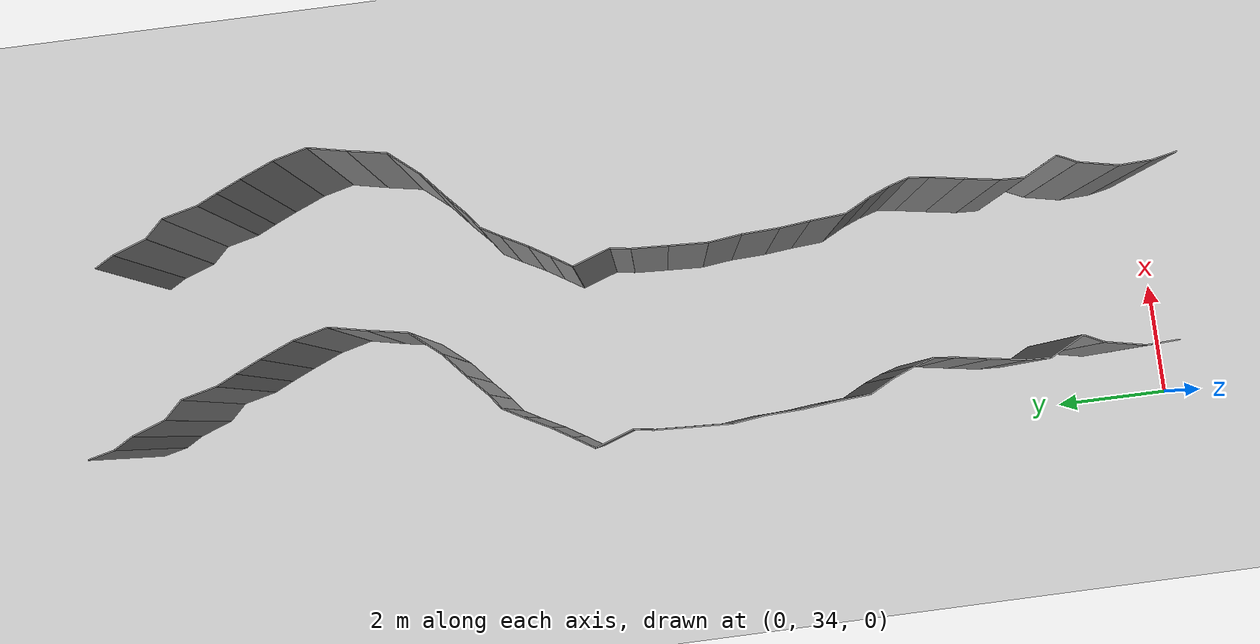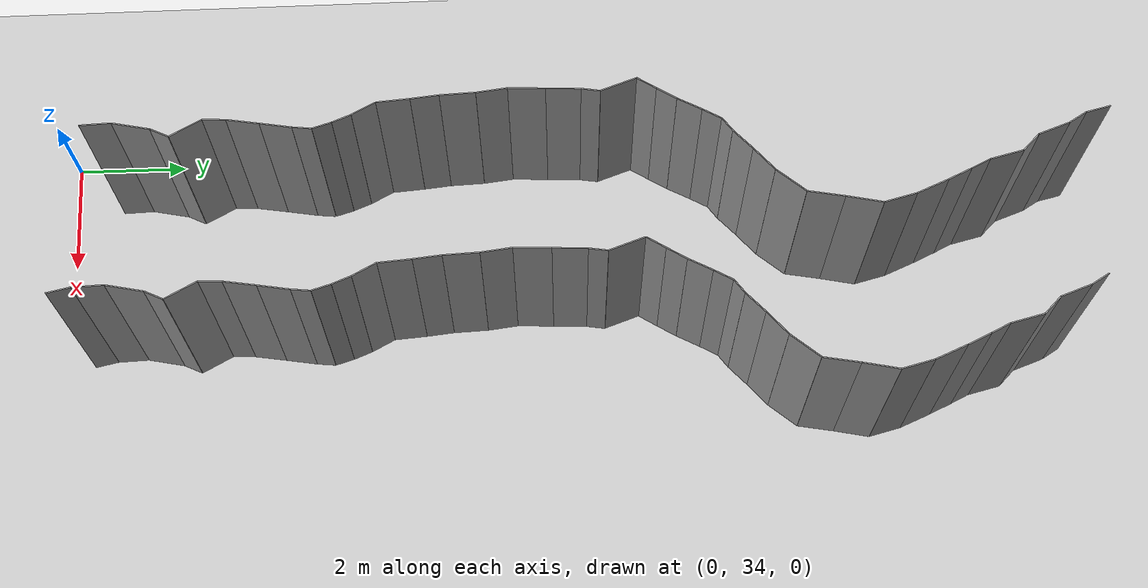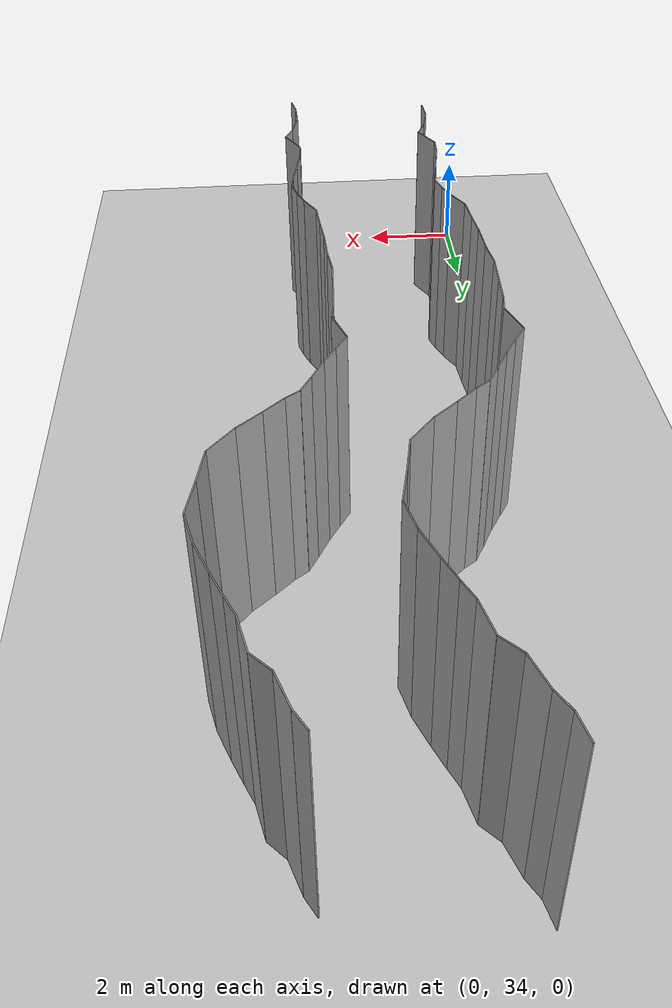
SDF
<sdf version="1.6">
 <world name="default">
  <model name="ground_plane">
   <static>1</static>
   <link name="link">
    <collision name="collision">
     <geometry><plane><normal>0 0 1</normal><size>200 200</size></plane></geometry>
     <surface><friction><ode><mu>100</mu><mu2>50</mu2></ode></friction></surface>
    </collision>
    <visual name="visual">
     <cast_shadows>0</cast_shadows>
     <geometry><plane><normal>0 0 1</normal><size>200 200</size></plane></geometry>
     <material>
      <script><uri>file://media/materials/scripts/gazebo.material</uri><name>Gazebo/Grey</name></script>
     </material>
    </visual>
   </link>
   <pose>0 100 0 0 -0 0</pose>
  </model>
  <model name="wall_149">
   <static>1</static>
   <pose>3.9239204196627675 34.65008082705074 2 0 0 0.20445626135803957</pose>
   <link name="link">
    <collision name="collision"><geometry><box><size>0.02 0.43027876864 4</size></box></geometry></collision>
    <visual name="visual">
     <material>
      <script><name>Gazebo/Grey</name><uri>file://media/materials/scripts/gazebo.material</uri></script>
     </material>
     <geometry><box><size>0.02 0.43027876864 4</size></box></geometry>
    </visual>
   </link>
  </model>
  <model name="wall_150">
   <static>1</static>
   <pose>0.8704913366165888 35.142128719754304 2 0 0 0.03462960774158834</pose>
   <link name="link">
    <collision name="collision"><geometry><box><size>0.02 0.563116680193 4</size></box></geometry></collision>
    <visual name="visual">
     <material>
      <script><name>Gazebo/Grey</name><uri>file://media/materials/scripts/gazebo.material</uri></script>
     </material>
     <geometry><box><size>0.02 0.563116680193 4</size></box></geometry>
    </visual>
   </link>
  </model>
  <model name="wall_151">
   <static>1</static>
   <pose>3.8704913366165887 35.142128719754304 2 0 0 0.03462960774158834</pose>
   <link name="link">
    <collision name="collision"><geometry><box><size>0.02 0.563116680193 4</size></box></geometry></collision>
    <visual name="visual">
     <material>
      <script><name>Gazebo/Grey</name><uri>file://media/materials/scripts/gazebo.material</uri></script>
     </material>
     <geometry><box><size>0.02 0.563116680193 4</size></box></geometry>
    </visual>
   </link>
  </model>
  <model name="wall_152">
   <static>1</static>
   <pose>0.9309304983596671 35.759803084062504 2 0 0 -0.20576052317169233</pose>
   <link name="link">
    <collision name="collision"><geometry><box><size>0.02 0.687062641342 4</size></box></geometry></collision>
    <visual name="visual">
     <material>
      <script><name>Gazebo/Grey</name><uri>file://media/materials/scripts/gazebo.material</uri></script>
     </material>
     <geometry><box><size>0.02 0.687062641342 4</size></box></geometry>
    </visual>
   </link>
  </model>
  <model name="wall_153">
   <static>1</static>
   <pose>3.9309304983596673 35.759803084062504 2 0 0 -0.20576052317169233</pose>
   <link name="link">
    <collision name="collision"><geometry><box><size>0.02 0.687062641342 4</size></box></geometry></collision>
    <visual name="visual">
     <material>
      <script><name>Gazebo/Grey</name><uri>file://media/materials/scripts/gazebo.material</uri></script>
     </material>
     <geometry><box><size>0.02 0.687062641342 4</size></box></geometry>
    </visual>
   </link>
  </model>
  <model name="wall_154">
   <static>1</static>
   <pose>1.0787655183014848 36.25987318850832 2 0 0 -0.44269857589574896</pose>
   <link name="link">
    <collision name="collision"><geometry><box><size>0.02 0.362517630442 4</size></box></geometry></collision>
    <visual name="visual">
     <material>
      <script><name>Gazebo/Grey</name><uri>file://media/materials/scripts/gazebo.material</uri></script>
     </material>
     <geometry><box><size>0.02 0.362517630442 4</size></box></geometry>
    </visual>
   </link>
  </model>
  <model name="wall_155">
   <static>1</static>
   <pose>4.078765518301485 36.25987318850832 2 0 0 -0.44269857589574896</pose>
   <link name="link">
    <collision name="collision"><geometry><box><size>0.02 0.362517630442 4</size></box></geometry></collision>
    <visual name="visual">
     <material>
      <script><name>Gazebo/Grey</name><uri>file://media/materials/scripts/gazebo.material</uri></script>
     </material>
     <geometry><box><size>0.02 0.362517630442 4</size></box></geometry>
    </visual>
   </link>
  </model>
  <model name="wall_156">
   <static>1</static>
   <pose>1.006678137784895 36.70904799699519 2 0 0 0.4831871846608332</pose>
   <link name="link">
    <collision name="collision"><geometry><box><size>0.02 0.644570358523 4</size></box></geometry></collision>
    <visual name="visual">
     <material>
      <script><name>Gazebo/Grey</name><uri>file://media/materials/scripts/gazebo.material</uri></script>
     </material>
     <geometry><box><size>0.02 0.644570358523 4</size></box></geometry>
    </visual>
   </link>
  </model>
  <model name="wall_157">
   <static>1</static>
   <pose>4.0066781377848955 36.70904799699519 2 0 0 0.4831871846608332</pose>
   <link name="link">
    <collision name="collision"><geometry><box><size>0.02 0.644570358523 4</size></box></geometry></collision>
    <visual name="visual">
     <material>
      <script><name>Gazebo/Grey</name><uri>file://media/materials/scripts/gazebo.material</uri></script>
     </material>
     <geometry><box><size>0.02 0.644570358523 4</size></box></geometry>
    </visual>
   </link>
  </model>
  <model name="wall_158">
   <static>1</static>
   <pose>0.8663357798228689 37.20195509348812 2 0 0 -0.045230718924256286</pose>
   <link name="link">
    <collision name="collision"><geometry><box><size>0.02 0.415460028061 4</size></box></geometry></collision>
    <visual name="visual">
     <material>
      <script><name>Gazebo/Grey</name><uri>file://media/materials/scripts/gazebo.material</uri></script>
     </material>
     <geometry><box><size>0.02 0.415460028061 4</size></box></geometry>
    </visual>
   </link>
  </model>
  <model name="wall_159">
   <static>1</static>
   <pose>3.866335779822869 37.20195509348812 2 0 0 -0.045230718924256286</pose>
   <link name="link">
    <collision name="collision"><geometry><box><size>0.02 0.415460028061 4</size></box></geometry></collision>
    <visual name="visual">
     <material>
      <script><name>Gazebo/Grey</name><uri>file://media/materials/scripts/gazebo.material</uri></script>
     </material>
     <geometry><box><size>0.02 0.415460028061 4</size></box></geometry>
    </visual>
   </link>
  </model>
  <model name="wall_160">
   <static>1</static>
   <pose>0.9224930562602742 37.69992433524903 2 0 0 -0.15963679809024692</pose>
   <link name="link">
    <collision name="collision"><geometry><box><size>0.02 0.588384622478 4</size></box></geometry></collision>
    <visual name="visual">
     <material>
      <script><name>Gazebo/Grey</name><uri>file://media/materials/scripts/gazebo.material</uri></script>
     </material>
     <geometry><box><size>0.02 0.588384622478 4</size></box></geometry>
    </visual>
   </link>
  </model>
  <model name="wall_161">
   <static>1</static>
   <pose>3.922493056260274 37.69992433524903 2 0 0 -0.15963679809024692</pose>
   <link name="link">
    <collision name="collision"><geometry><box><size>0.02 0.588384622478 4</size></box></geometry></collision>
    <visual name="visual">
     <material>
      <script><name>Gazebo/Grey</name><uri>file://media/materials/scripts/gazebo.material</uri></script>
     </material>
     <geometry><box><size>0.02 0.588384622478 4</size></box></geometry>
    </visual>
   </link>
  </model>
  <model name="wall_162">
   <static>1</static>
   <pose>1.0173873821105948 38.27496158089008 2 0 0 -0.16753650364621095</pose>
   <link name="link">
    <collision name="collision"><geometry><box><size>0.02 0.577253513264 4</size></box></geometry></collision>
    <visual name="visual">
     <material>
      <script><name>Gazebo/Grey</name><uri>file://media/materials/scripts/gazebo.material</uri></script>
     </material>
     <geometry><box><size>0.02 0.577253513264 4</size></box></geometry>
    </visual>
   </link>
  </model>
  <model name="wall_163">
   <static>1</static>
   <pose>4.017387382110595 38.27496158089008 2 0 0 -0.16753650364621095</pose>
   <link name="link">
    <collision name="collision"><geometry><box><size>0.02 0.577253513264 4</size></box></geometry></collision>
    <visual name="visual">
     <material>
      <script><name>Gazebo/Grey</name><uri>file://media/materials/scripts/gazebo.material</uri></script>
     </material>
     <geometry><box><size>0.02 0.577253513264 4</size></box></geometry>
    </visual>
   </link>
  </model>
  <model name="wall_164">
   <static>1</static>
   <pose>1.0844622152562788 38.731563447598155 2 0 0 -0.10969402421771438</pose>
   <link name="link">
    <collision name="collision"><geometry><box><size>0.02 0.346112865536 4</size></box></geometry></collision>
    <visual name="visual">
     <material>
      <script><name>Gazebo/Grey</name><uri>file://media/materials/scripts/gazebo.material</uri></script>
     </material>
     <geometry><box><size>0.02 0.346112865536 4</size></box></geometry>
    </visual>
   </link>
  </model>
  <model name="wall_165">
   <static>1</static>
   <pose>4.084462215256279 38.731563447598155 2 0 0 -0.10969402421771438</pose>
   <link name="link">
    <collision name="collision"><geometry><box><size>0.02 0.346112865536 4</size></box></geometry></collision>
    <visual name="visual">
     <material>
      <script><name>Gazebo/Grey</name><uri>file://media/materials/scripts/gazebo.material</uri></script>
     </material>
     <geometry><box><size>0.02 0.346112865536 4</size></box></geometry>
    </visual>
   </link>
  </model>
  <model name="wall_166">
   <static>1</static>
   <pose>1.0528176380058856 39.07550781879453 2 0 0 0.2861729953578919</pose>
   <link name="link">
    <collision name="collision"><geometry><box><size>0.02 0.358433188497 4</size></box></geometry></collision>
    <visual name="visual">
     <material>
      <script><name>Gazebo/Grey</name><uri>file://media/materials/scripts/gazebo.material</uri></script>
     </material>
     <geometry><box><size>0.02 0.358433188497 4</size></box></geometry>
    </visual>
   </link>
  </model>
  <model name="wall_167">
   <static>1</static>
   <pose>4.052817638005886 39.07550781879453 2 0 0 0.2861729953578919</pose>
   <link name="link">
    <collision name="collision"><geometry><box><size>0.02 0.358433188497 4</size></box></geometry></collision>
    <visual name="visual">
     <material>
      <script><name>Gazebo/Grey</name><uri>file://media/materials/scripts/gazebo.material</uri></script>
     </material>
     <geometry><box><size>0.02 0.358433188497 4</size></box></geometry>
    </visual>
   </link>
  </model>
  <model name="wall_168">
   <static>1</static>
   <pose>0.9354883147767599 39.416214110200244 2 0 0 0.3765582932644857</pose>
   <link name="link">
    <collision name="collision"><geometry><box><size>0.02 0.362989001935 4</size></box></geometry></collision>
    <visual name="visual">
     <material>
      <script><name>Gazebo/Grey</name><uri>file://media/materials/scripts/gazebo.material</uri></script>
     </material>
     <geometry><box><size>0.02 0.362989001935 4</size></box></geometry>
    </visual>
   </link>
  </model>
  <model name="wall_169">
   <static>1</static>
   <pose>3.9354883147767596 39.416214110200244 2 0 0 0.3765582932644857</pose>
   <link name="link">
    <collision name="collision"><geometry><box><size>0.02 0.362989001935 4</size></box></geometry></collision>
    <visual name="visual">
     <material>
      <script><name>Gazebo/Grey</name><uri>file://media/materials/scripts/gazebo.material</uri></script>
     </material>
     <geometry><box><size>0.02 0.362989001935 4</size></box></geometry>
    </visual>
   </link>
  </model>
  <model name="wall_170">
   <static>1</static>
   <pose>0.757496980346532 39.79883595564514 2 0 0 0.47971478098344517</pose>
   <link name="link">
    <collision name="collision"><geometry><box><size>0.02 0.482103963508 4</size></box></geometry></collision>
    <visual name="visual">
     <material>
      <script><name>Gazebo/Grey</name><uri>file://media/materials/scripts/gazebo.material</uri></script>
     </material>
     <geometry><box><size>0.02 0.482103963508 4</size></box></geometry>
    </visual>
   </link>
  </model>
  <model name="wall_171">
   <static>1</static>
   <pose>3.757496980346532 39.79883595564514 2 0 0 0.47971478098344517</pose>
   <link name="link">
    <collision name="collision"><geometry><box><size>0.02 0.482103963508 4</size></box></geometry></collision>
    <visual name="visual">
     <material>
      <script><name>Gazebo/Grey</name><uri>file://media/materials/scripts/gazebo.material</uri></script>
     </material>
     <geometry><box><size>0.02 0.482103963508 4</size></box></geometry>
    </visual>
   </link>
  </model>
  <model name="wall_172">
   <static>1</static>
   <pose>0.6244893099963778 40.31323860465824 2 0 0 0.07225866777856937</pose>
   <link name="link">
    <collision name="collision"><geometry><box><size>0.02 0.60269078524 4</size></box></geometry></collision>
    <visual name="visual">
     <material>
      <script><name>Gazebo/Grey</name><uri>file://media/materials/scripts/gazebo.material</uri></script>
     </material>
     <geometry><box><size>0.02 0.60269078524 4</size></box></geometry>
    </visual>
   </link>
  </model>
  <model name="wall_173">
   <static>1</static>
   <pose>3.6244893099963775 40.31323860465824 2 0 0 0.07225866777856937</pose>
   <link name="link">
    <collision name="collision"><geometry><box><size>0.02 0.60269078524 4</size></box></geometry></collision>
    <visual name="visual">
     <material>
      <script><name>Gazebo/Grey</name><uri>file://media/materials/scripts/gazebo.material</uri></script>
     </material>
     <geometry><box><size>0.02 0.60269078524 4</size></box></geometry>
    </visual>
   </link>
  </model>
  <model name="wall_174">
   <static>1</static>
   <pose>0.5772567695850367 40.86838111164113 2 0 0 0.09973989840003131</pose>
   <link name="link">
    <collision name="collision"><geometry><box><size>0.02 0.511710112355 4</size></box></geometry></collision>
    <visual name="visual">
     <material>
      <script><name>Gazebo/Grey</name><uri>file://media/materials/scripts/gazebo.material</uri></script>
     </material>
     <geometry><box><size>0.02 0.511710112355 4</size></box></geometry>
    </visual>
   </link>
  </model>
  <model name="wall_175">
   <static>1</static>
   <pose>3.577256769585037 40.86838111164113 2 0 0 0.09973989840003131</pose>
   <link name="link">
    <collision name="collision"><geometry><box><size>0.02 0.511710112355 4</size></box></geometry></collision>
    <visual name="visual">
     <material>
      <script><name>Gazebo/Grey</name><uri>file://media/materials/scripts/gazebo.material</uri></script>
     </material>
     <geometry><box><size>0.02 0.511710112355 4</size></box></geometry>
    </visual>
   </link>
  </model>
  <model name="wall_176">
   <static>1</static>
   <pose>0.539848820118687 41.443198120527285 2 0 0 0.03724083981375796</pose>
   <link name="link">
    <collision name="collision"><geometry><box><size>0.02 0.64091143661 4</size></box></geometry></collision>
    <visual name="visual">
     <material>
      <script><name>Gazebo/Grey</name><uri>file://media/materials/scripts/gazebo.material</uri></script>
     </material>
     <geometry><box><size>0.02 0.64091143661 4</size></box></geometry>
    </visual>
   </link>
  </model>
  <model name="wall_177">
   <static>1</static>
   <pose>3.539848820118687 41.443198120527285 2 0 0 0.03724083981375796</pose>
   <link name="link">
    <collision name="collision"><geometry><box><size>0.02 0.64091143661 4</size></box></geometry></collision>
    <visual name="visual">
     <material>
      <script><name>Gazebo/Grey</name><uri>file://media/materials/scripts/gazebo.material</uri></script>
     </material>
     <geometry><box><size>0.02 0.64091143661 4</size></box></geometry>
    </visual>
   </link>
  </model>
  <model name="wall_178">
   <static>1</static>
   <pose>0.49600251614485014 42.04236264380286 2 0 0 0.11392363111444061</pose>
   <link name="link">
    <collision name="collision"><geometry><box><size>0.02 0.561501804962 4</size></box></geometry></collision>
    <visual name="visual">
     <material>
      <script><name>Gazebo/Grey</name><uri>file://media/materials/scripts/gazebo.material</uri></script>
     </material>
     <geometry><box><size>0.02 0.561501804962 4</size></box></geometry>
    </visual>
   </link>
  </model>
  <model name="wall_179">
   <static>1</static>
   <pose>3.4960025161448502 42.04236264380286 2 0 0 0.11392363111444061</pose>
   <link name="link">
    <collision name="collision"><geometry><box><size>0.02 0.561501804962 4</size></box></geometry></collision>
    <visual name="visual">
     <material>
      <script><name>Gazebo/Grey</name><uri>file://media/materials/scripts/gazebo.material</uri></script>
     </material>
     <geometry><box><size>0.02 0.561501804962 4</size></box></geometry>
    </visual>
   </link>
  </model>
  <model name="wall_180">
   <static>1</static>
   <pose>0.4798855004668867 42.654808596039615 2 0 0 -0.04733283038546878</pose>
   <link name="link">
    <collision name="collision"><geometry><box><size>0.02 0.667777816223 4</size></box></geometry></collision>
    <visual name="visual">
     <material>
      <script><name>Gazebo/Grey</name><uri>file://media/materials/scripts/gazebo.material</uri></script>
     </material>
     <geometry><box><size>0.02 0.667777816223 4</size></box></geometry>
    </visual>
   </link>
  </model>
  <model name="wall_181">
   <static>1</static>
   <pose>3.479885500466887 42.654808596039615 2 0 0 -0.04733283038546878</pose>
   <link name="link">
    <collision name="collision"><geometry><box><size>0.02 0.667777816223 4</size></box></geometry></collision>
    <visual name="visual">
     <material>
      <script><name>Gazebo/Grey</name><uri>file://media/materials/scripts/gazebo.material</uri></script>
     </material>
     <geometry><box><size>0.02 0.667777816223 4</size></box></geometry>
    </visual>
   </link>
  </model>
  <model name="wall_182">
   <static>1</static>
   <pose>0.5116992023763561 43.29828923566824 2 0 0 -0.051623345974134476</pose>
   <link name="link">
    <collision name="collision"><geometry><box><size>0.02 0.620758334482 4</size></box></geometry></collision>
    <visual name="visual">
     <material>
      <script><name>Gazebo/Grey</name><uri>file://media/materials/scripts/gazebo.material</uri></script>
     </material>
     <geometry><box><size>0.02 0.620758334482 4</size></box></geometry>
    </visual>
   </link>
  </model>
  <model name="wall_183">
   <static>1</static>
   <pose>3.5116992023763562 43.29828923566824 2 0 0 -0.051623345974134476</pose>
   <link name="link">
    <collision name="collision"><geometry><box><size>0.02 0.620758334482 4</size></box></geometry></collision>
    <visual name="visual">
     <material>
      <script><name>Gazebo/Grey</name><uri>file://media/materials/scripts/gazebo.material</uri></script>
     </material>
     <geometry><box><size>0.02 0.620758334482 4</size></box></geometry>
    </visual>
   </link>
  </model>
  <model name="wall_184">
   <static>1</static>
   <pose>0.5539174357366535 43.77749502705897 2 0 0 -0.15360504526523366</pose>
   <link name="link">
    <collision name="collision"><geometry><box><size>0.02 0.342512990177 4</size></box></geometry></collision>
    <visual name="visual">
     <material>
      <script><name>Gazebo/Grey</name><uri>file://media/materials/scripts/gazebo.material</uri></script>
     </material>
     <geometry><box><size>0.02 0.342512990177 4</size></box></geometry>
    </visual>
   </link>
  </model>
  <model name="wall_185">
   <static>1</static>
   <pose>3.5539174357366536 43.77749502705897 2 0 0 -0.15360504526523366</pose>
   <link name="link">
    <collision name="collision"><geometry><box><size>0.02 0.342512990177 4</size></box></geometry></collision>
    <visual name="visual">
     <material>
      <script><name>Gazebo/Grey</name><uri>file://media/materials/scripts/gazebo.material</uri></script>
     </material>
     <geometry><box><size>0.02 0.342512990177 4</size></box></geometry>
    </visual>
   </link>
  </model>
  <model name="wall_186">
   <static>1</static>
   <pose>0.46916573424835484 44.26973230173024 2 0 0 0.3308855293030495</pose>
   <link name="link">
    <collision name="collision"><geometry><box><size>0.02 0.683046156625 4</size></box></geometry></collision>
    <visual name="visual">
     <material>
      <script><name>Gazebo/Grey</name><uri>file://media/materials/scripts/gazebo.material</uri></script>
     </material>
     <geometry><box><size>0.02 0.683046156625 4</size></box></geometry>
    </visual>
   </link>
  </model>
  <model name="wall_187">
   <static>1</static>
   <pose>3.469165734248355 44.26973230173024 2 0 0 0.3308855293030495</pose>
   <link name="link">
    <collision name="collision"><geometry><box><size>0.02 0.683046156625 4</size></box></geometry></collision>
    <visual name="visual">
     <material>
      <script><name>Gazebo/Grey</name><uri>file://media/materials/scripts/gazebo.material</uri></script>
     </material>
     <geometry><box><size>0.02 0.683046156625 4</size></box></geometry>
    </visual>
   </link>
  </model>
  <model name="wall_188">
   <static>1</static>
   <pose>0.4645800463227797 44.76147034130841 2 0 0 -0.5624488898382787</pose>
   <link name="link">
    <collision name="collision"><geometry><box><size>0.02 0.398937342985 4</size></box></geometry></collision>
    <visual name="visual">
     <material>
      <script><name>Gazebo/Grey</name><uri>file://media/materials/scripts/gazebo.material</uri></script>
     </material>
     <geometry><box><size>0.02 0.398937342985 4</size></box></geometry>
    </visual>
   </link>
  </model>
  <model name="wall_189">
   <static>1</static>
   <pose>3.4645800463227796 44.76147034130841 2 0 0 -0.5624488898382787</pose>
   <link name="link">
    <collision name="collision"><geometry><box><size>0.02 0.398937342985 4</size></box></geometry></collision>
    <visual name="visual">
     <material>
      <script><name>Gazebo/Grey</name><uri>file://media/materials/scripts/gazebo.material</uri></script>
     </material>
     <geometry><box><size>0.02 0.398937342985 4</size></box></geometry>
    </visual>
   </link>
  </model>
  <model name="wall_190">
   <static>1</static>
   <pose>0.6776395704448512 45.10397498786715 2 0 0 -0.5506501345800691</pose>
   <link name="link">
    <collision name="collision"><geometry><box><size>0.02 0.407807860173 4</size></box></geometry></collision>
    <visual name="visual">
     <material>
      <script><name>Gazebo/Grey</name><uri>file://media/materials/scripts/gazebo.material</uri></script>
     </material>
     <geometry><box><size>0.02 0.407807860173 4</size></box></geometry>
    </visual>
   </link>
  </model>
  <model name="wall_191">
   <static>1</static>
   <pose>3.6776395704448515 45.10397498786715 2 0 0 -0.5506501345800691</pose>
   <link name="link">
    <collision name="collision"><geometry><box><size>0.02 0.407807860173 4</size></box></geometry></collision>
    <visual name="visual">
     <material>
      <script><name>Gazebo/Grey</name><uri>file://media/materials/scripts/gazebo.material</uri></script>
     </material>
     <geometry><box><size>0.02 0.407807860173 4</size></box></geometry>
    </visual>
   </link>
  </model>
  <model name="wall_192">
   <static>1</static>
   <pose>0.8967950665516643 45.490905214644364 2 0 0 -0.48547534107791</pose>
   <link name="link">
    <collision name="collision"><geometry><box><size>0.02 0.482029898406 4</size></box></geometry></collision>
    <visual name="visual">
     <material>
      <script><name>Gazebo/Grey</name><uri>file://media/materials/scripts/gazebo.material</uri></script>
     </material>
     <geometry><box><size>0.02 0.482029898406 4</size></box></geometry>
    </visual>
   </link>
  </model>
  <model name="wall_193">
   <static>1</static>
   <pose>3.896795066551664 45.490905214644364 2 0 0 -0.48547534107791</pose>
   <link name="link">
    <collision name="collision"><geometry><box><size>0.02 0.482029898406 4</size></box></geometry></collision>
    <visual name="visual">
     <material>
      <script><name>Gazebo/Grey</name><uri>file://media/materials/scripts/gazebo.material</uri></script>
     </material>
     <geometry><box><size>0.02 0.482029898406 4</size></box></geometry>
    </visual>
   </link>
  </model>
  <model name="wall_194">
   <static>1</static>
   <pose>1.102490493124489 45.869267710442976 2 0 0 -0.5138052431447958</pose>
   <link name="link">
    <collision name="collision"><geometry><box><size>0.02 0.379377035872 4</size></box></geometry></collision>
    <visual name="visual">
     <material>
      <script><name>Gazebo/Grey</name><uri>file://media/materials/scripts/gazebo.material</uri></script>
     </material>
     <geometry><box><size>0.02 0.379377035872 4</size></box></geometry>
    </visual>
   </link>
  </model>
  <model name="wall_195">
   <static>1</static>
   <pose>4.102490493124489 45.869267710442976 2 0 0 -0.5138052431447958</pose>
   <link name="link">
    <collision name="collision"><geometry><box><size>0.02 0.379377035872 4</size></box></geometry></collision>
    <visual name="visual">
     <material>
      <script><name>Gazebo/Grey</name><uri>file://media/materials/scripts/gazebo.material</uri></script>
     </material>
     <geometry><box><size>0.02 0.379377035872 4</size></box></geometry>
    </visual>
   </link>
  </model>
  <model name="wall_196">
   <static>1</static>
   <pose>1.3170822508846909 46.1229539157399 2 0 0 -0.9407738620319585</pose>
   <link name="link">
    <collision name="collision"><geometry><box><size>0.02 0.300392848914 4</size></box></geometry></collision>
    <visual name="visual">
     <material>
      <script><name>Gazebo/Grey</name><uri>file://media/materials/scripts/gazebo.material</uri></script>
     </material>
     <geometry><box><size>0.02 0.300392848914 4</size></box></geometry>
    </visual>
   </link>
  </model>
  <model name="wall_197">
   <static>1</static>
   <pose>4.317082250884691 46.1229539157399 2 0 0 -0.9407738620319585</pose>
   <link name="link">
    <collision name="collision"><geometry><box><size>0.02 0.300392848914 4</size></box></geometry></collision>
    <visual name="visual">
     <material>
      <script><name>Gazebo/Grey</name><uri>file://media/materials/scripts/gazebo.material</uri></script>
     </material>
     <geometry><box><size>0.02 0.300392848914 4</size></box></geometry>
    </visual>
   </link>
  </model>
  <model name="wall_198">
   <static>1</static>
   <pose>1.615046346363656 46.375535012743676 2 0 0 -0.8221075825544054</pose>
   <link name="link">
    <collision name="collision"><geometry><box><size>0.02 0.482139147676 4</size></box></geometry></collision>
    <visual name="visual">
     <material>
      <script><name>Gazebo/Grey</name><uri>file://media/materials/scripts/gazebo.material</uri></script>
     </material>
     <geometry><box><size>0.02 0.482139147676 4</size></box></geometry>
    </visual>
   </link>
  </model>
  <model name="wall_199">
   <static>1</static>
   <pose>4.6150463463636555 46.375535012743676 2 0 0 -0.8221075825544054</pose>
   <link name="link">
    <collision name="collision"><geometry><box><size>0.02 0.482139147676 4</size></box></geometry></collision>
    <visual name="visual">
     <material>
      <script><name>Gazebo/Grey</name><uri>file://media/materials/scripts/gazebo.material</uri></script>
     </material>
     <geometry><box><size>0.02 0.482139147676 4</size></box></geometry>
    </visual>
   </link>
  </model>
  <model name="wall_200">
   <static>1</static>
   <pose>1.9972519164830225 46.71783413620596 2 0 0 -0.8566514592350649</pose>
   <link name="link">
    <collision name="collision"><geometry><box><size>0.02 0.544170842487 4</size></box></geometry></collision>
    <visual name="visual">
     <material>
      <script><name>Gazebo/Grey</name><uri>file://media/materials/scripts/gazebo.material</uri></script>
     </material>
     <geometry><box><size>0.02 0.544170842487 4</size></box></geometry>
    </visual>
   </link>
  </model>
  <model name="wall_201">
   <static>1</static>
   <pose>4.997251916483022 46.71783413620596 2 0 0 -0.8566514592350649</pose>
   <link name="link">
    <collision name="collision"><geometry><box><size>0.02 0.544170842487 4</size></box></geometry></collision>
    <visual name="visual">
     <material>
      <script><name>Gazebo/Grey</name><uri>file://media/materials/scripts/gazebo.material</uri></script>
     </material>
     <geometry><box><size>0.02 0.544170842487 4</size></box></geometry>
    </visual>
   </link>
  </model>
  <model name="wall_202">
   <static>1</static>
   <pose>2.414025663902798 47.14948832686361 2 0 0 -0.694660070242626</pose>
   <link name="link">
    <collision name="collision"><geometry><box><size>0.02 0.659782520472 4</size></box></geometry></collision>
    <visual name="visual">
     <material>
      <script><name>Gazebo/Grey</name><uri>file://media/materials/scripts/gazebo.material</uri></script>
     </material>
     <geometry><box><size>0.02 0.659782520472 4</size></box></geometry>
    </visual>
   </link>
  </model>
  <model name="wall_203">
   <static>1</static>
   <pose>5.414025663902798 47.14948832686361 2 0 0 -0.694660070242626</pose>
   <link name="link">
    <collision name="collision"><geometry><box><size>0.02 0.659782520472 4</size></box></geometry></collision>
    <visual name="visual">
     <material>
      <script><name>Gazebo/Grey</name><uri>file://media/materials/scripts/gazebo.material</uri></script>
     </material>
     <geometry><box><size>0.02 0.659782520472 4</size></box></geometry>
    </visual>
   </link>
  </model>
  <model name="wall_204">
   <static>1</static>
   <pose>2.6852910926496945 47.73088167485766 2 0 0 -0.18123224474230137</pose>
   <link name="link">
    <collision name="collision"><geometry><box><size>0.02 0.666815572886 4</size></box></geometry></collision>
    <visual name="visual">
     <material>
      <script><name>Gazebo/Grey</name><uri>file://media/materials/scripts/gazebo.material</uri></script>
     </material>
     <geometry><box><size>0.02 0.666815572886 4</size></box></geometry>
    </visual>
   </link>
  </model>
  <model name="wall_205">
   <static>1</static>
   <pose>5.6852910926496945 47.73088167485766 2 0 0 -0.18123224474230137</pose>
   <link name="link">
    <collision name="collision"><geometry><box><size>0.02 0.666815572886 4</size></box></geometry></collision>
    <visual name="visual">
     <material>
      <script><name>Gazebo/Grey</name><uri>file://media/materials/scripts/gazebo.material</uri></script>
     </material>
     <geometry><box><size>0.02 0.666815572886 4</size></box></geometry>
    </visual>
   </link>
  </model>
  <model name="wall_206">
   <static>1</static>
   <pose>2.8138639876377103 48.3840953946392 2 0 0 -0.20750138721146327</pose>
   <link name="link">
    <collision name="collision"><geometry><box><size>0.02 0.664793415483 4</size></box></geometry></collision>
    <visual name="visual">
     <material>
      <script><name>Gazebo/Grey</name><uri>file://media/materials/scripts/gazebo.material</uri></script>
     </material>
     <geometry><box><size>0.02 0.664793415483 4</size></box></geometry>
    </visual>
   </link>
  </model>
  <model name="wall_207">
   <static>1</static>
   <pose>5.81386398763771 48.3840953946392 2 0 0 -0.20750138721146327</pose>
   <link name="link">
    <collision name="collision"><geometry><box><size>0.02 0.664793415483 4</size></box></geometry></collision>
    <visual name="visual">
     <material>
      <script><name>Gazebo/Grey</name><uri>file://media/materials/scripts/gazebo.material</uri></script>
     </material>
     <geometry><box><size>0.02 0.664793415483 4</size></box></geometry>
    </visual>
   </link>
  </model>
  <model name="wall_208">
   <static>1</static>
   <pose>2.8103397212014136 48.99979868704225 2 0 0 0.2430136691927998</pose>
   <link name="link">
    <collision name="collision"><geometry><box><size>0.02 0.598458211011 4</size></box></geometry></collision>
    <visual name="visual">
     <material>
      <script><name>Gazebo/Grey</name><uri>file://media/materials/scripts/gazebo.material</uri></script>
     </material>
     <geometry><box><size>0.02 0.598458211011 4</size></box></geometry>
    </visual>
   </link>
  </model>
  <model name="wall_209">
   <static>1</static>
   <pose>5.810339721201414 48.99979868704225 2 0 0 0.2430136691927998</pose>
   <link name="link">
    <collision name="collision"><geometry><box><size>0.02 0.598458211011 4</size></box></geometry></collision>
    <visual name="visual">
     <material>
      <script><name>Gazebo/Grey</name><uri>file://media/materials/scripts/gazebo.material</uri></script>
     </material>
     <geometry><box><size>0.02 0.598458211011 4</size></box></geometry>
    </visual>
   </link>
  </model>
  <model name="wall_210">
   <static>1</static>
   <pose>2.621835887290903 49.57283613610712 2 0 0 0.39101772349927655</pose>
   <link name="link">
    <collision name="collision"><geometry><box><size>0.02 0.611344318123 4</size></box></geometry></collision>
    <visual name="visual">
     <material>
      <script><name>Gazebo/Grey</name><uri>file://media/materials/scripts/gazebo.material</uri></script>
     </material>
     <geometry><box><size>0.02 0.611344318123 4</size></box></geometry>
    </visual>
   </link>
  </model>
  <model name="wall_211">
   <static>1</static>
   <pose>5.621835887290903 49.57283613610712 2 0 0 0.39101772349927655</pose>
   <link name="link">
    <collision name="collision"><geometry><box><size>0.02 0.611344318123 4</size></box></geometry></collision>
    <visual name="visual">
     <material>
      <script><name>Gazebo/Grey</name><uri>file://media/materials/scripts/gazebo.material</uri></script>
     </material>
     <geometry><box><size>0.02 0.611344318123 4</size></box></geometry>
    </visual>
   </link>
  </model>
  <model name="wall_212">
   <static>1</static>
   <pose>2.4123098290921705 50.06210805698171 2 0 0 0.4229474718860154</pose>
   <link name="link">
    <collision name="collision"><geometry><box><size>0.02 0.453284829392 4</size></box></geometry></collision>
    <visual name="visual">
     <material>
      <script><name>Gazebo/Grey</name><uri>file://media/materials/scripts/gazebo.material</uri></script>
     </material>
     <geometry><box><size>0.02 0.453284829392 4</size></box></geometry>
    </visual>
   </link>
  </model>
  <model name="wall_213">
   <static>1</static>
   <pose>5.4123098290921705 50.06210805698171 2 0 0 0.4229474718860154</pose>
   <link name="link">
    <collision name="collision"><geometry><box><size>0.02 0.453284829392 4</size></box></geometry></collision>
    <visual name="visual">
     <material>
      <script><name>Gazebo/Grey</name><uri>file://media/materials/scripts/gazebo.material</uri></script>
     </material>
     <geometry><box><size>0.02 0.453284829392 4</size></box></geometry>
    </visual>
   </link>
  </model>
  <model name="wall_214">
   <static>1</static>
   <pose>2.237971357265894 50.439329783368144 2 0 0 0.4448906145277738</pose>
   <link name="link">
    <collision name="collision"><geometry><box><size>0.02 0.377884832766 4</size></box></geometry></collision>
    <visual name="visual">
     <material>
      <script><name>Gazebo/Grey</name><uri>file://media/materials/scripts/gazebo.material</uri></script>
     </material>
     <geometry><box><size>0.02 0.377884832766 4</size></box></geometry>
    </visual>
   </link>
  </model>
  <model name="wall_215">
   <static>1</static>
   <pose>5.237971357265894 50.439329783368144 2 0 0 0.4448906145277738</pose>
   <link name="link">
    <collision name="collision"><geometry><box><size>0.02 0.377884832766 4</size></box></geometry></collision>
    <visual name="visual">
     <material>
      <script><name>Gazebo/Grey</name><uri>file://media/materials/scripts/gazebo.material</uri></script>
     </material>
     <geometry><box><size>0.02 0.377884832766 4</size></box></geometry>
    </visual>
   </link>
  </model>
  <model name="wall_216">
   <static>1</static>
   <pose>2.0843783816440236 50.91032754128619 2 0 0 0.2360877761466812</pose>
   <link name="link">
    <collision name="collision"><geometry><box><size>0.02 0.618038945114 4</size></box></geometry></collision>
    <visual name="visual">
     <material>
      <script><name>Gazebo/Grey</name><uri>file://media/materials/scripts/gazebo.material</uri></script>
     </material>
     <geometry><box><size>0.02 0.618038945114 4</size></box></geometry>
    </visual>
   </link>
  </model>
  <model name="wall_217">
   <static>1</static>
   <pose>5.084378381644024 50.91032754128619 2 0 0 0.2360877761466812</pose>
   <link name="link">
    <collision name="collision"><geometry><box><size>0.02 0.618038945114 4</size></box></geometry></collision>
    <visual name="visual">
     <material>
      <script><name>Gazebo/Grey</name><uri>file://media/materials/scripts/gazebo.material</uri></script>
     </material>
     <geometry><box><size>0.02 0.618038945114 4</size></box></geometry>
    </visual>
   </link>
  </model>
  <model name="wall_218">
   <static>1</static>
   <pose>1.865557092796871 51.360063636584506 2 0 0 0.7761118054766024</pose>
   <link name="link">
    <collision name="collision"><geometry><box><size>0.02 0.418384955539 4</size></box></geometry></collision>
    <visual name="visual">
     <material>
      <script><name>Gazebo/Grey</name><uri>file://media/materials/scripts/gazebo.material</uri></script>
     </material>
     <geometry><box><size>0.02 0.418384955539 4</size></box></geometry>
    </visual>
   </link>
  </model>
  <model name="wall_219">
   <static>1</static>
   <pose>4.865557092796871 51.360063636584506 2 0 0 0.7761118054766024</pose>
   <link name="link">
    <collision name="collision"><geometry><box><size>0.02 0.418384955539 4</size></box></geometry></collision>
    <visual name="visual">
     <material>
      <script><name>Gazebo/Grey</name><uri>file://media/materials/scripts/gazebo.material</uri></script>
     </material>
     <geometry><box><size>0.02 0.418384955539 4</size></box></geometry>
    </visual>
   </link>
  </model>
  <model name="wall_220">
   <static>1</static>
   <pose>1.6194088206359774 51.78997128110106 2 0 0 0.34108146024513536</pose>
   <link name="link">
    <collision name="collision"><geometry><box><size>0.02 0.595545243056 4</size></box></geometry></collision>
    <visual name="visual">
     <material>
      <script><name>Gazebo/Grey</name><uri>file://media/materials/scripts/gazebo.material</uri></script>
     </material>
     <geometry><box><size>0.02 0.595545243056 4</size></box></geometry>
    </visual>
   </link>
  </model>
  <model name="wall_221">
   <static>1</static>
   <pose>4.619408820635977 51.78997128110106 2 0 0 0.34108146024513536</pose>
   <link name="link">
    <collision name="collision"><geometry><box><size>0.02 0.595545243056 4</size></box></geometry></collision>
    <visual name="visual">
     <material>
      <script><name>Gazebo/Grey</name><uri>file://media/materials/scripts/gazebo.material</uri></script>
     </material>
     <geometry><box><size>0.02 0.595545243056 4</size></box></geometry>
    </visual>
   </link>
  </model>
  <model name="wall_222">
   <static>1</static>
   <pose>1.4282915338617492 52.22529554415596 2 0 0 0.5341568054962005</pose>
   <link name="link">
    <collision name="collision"><geometry><box><size>0.02 0.359487886103 4</size></box></geometry></collision>
    <visual name="visual">
     <material>
      <script><name>Gazebo/Grey</name><uri>file://media/materials/scripts/gazebo.material</uri></script>
     </material>
     <geometry><box><size>0.02 0.359487886103 4</size></box></geometry>
    </visual>
   </link>
  </model>
  <model name="wall_223">
   <static>1</static>
   <pose>4.428291533861749 52.22529554415596 2 0 0 0.5341568054962005</pose>
   <link name="link">
    <collision name="collision"><geometry><box><size>0.02 0.359487886103 4</size></box></geometry></collision>
    <visual name="visual">
     <material>
      <script><name>Gazebo/Grey</name><uri>file://media/materials/scripts/gazebo.material</uri></script>
     </material>
     <geometry><box><size>0.02 0.359487886103 4</size></box></geometry>
    </visual>
   </link>
  </model>
  <model name="wall_224">
   <static>1</static>
   <pose>1.2848400152276431 52.6012489202789 2 0 0 0.23058833678077686</pose>
   <link name="link">
    <collision name="collision"><geometry><box><size>0.02 0.454526532368 4</size></box></geometry></collision>
    <visual name="visual">
     <material>
      <script><name>Gazebo/Grey</name><uri>file://media/materials/scripts/gazebo.material</uri></script>
     </material>
     <geometry><box><size>0.02 0.454526532368 4</size></box></geometry>
    </visual>
   </link>
  </model>
 </world>
</sdf>
